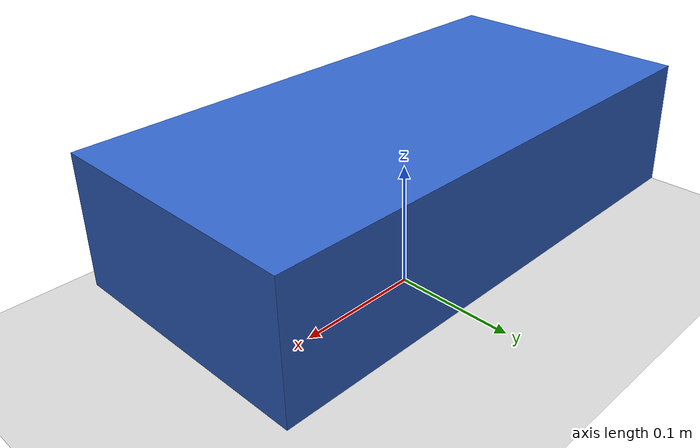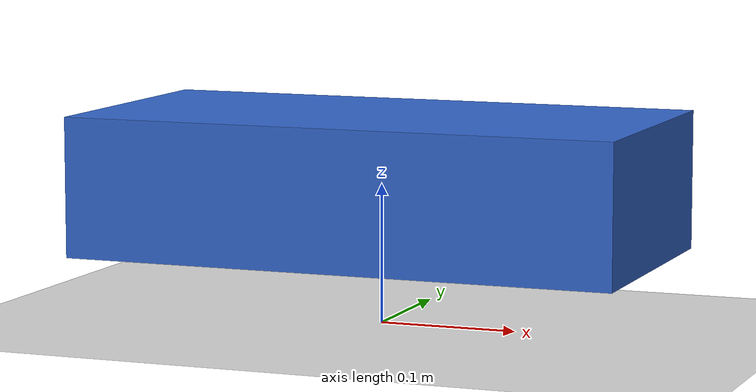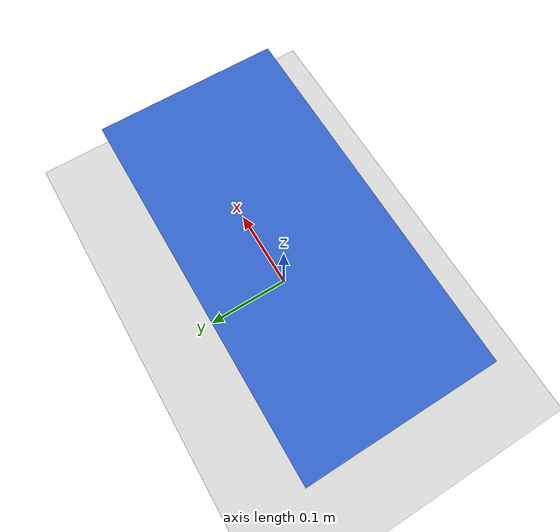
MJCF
<mujoco model="minimal-mobile-base">
  <option timestep="0.05"/>
  <worldbody>
    <light name="light" pos="0 0 2"/>
    <geom name="floor" type="plane" size="3 3 0.05" rgba="0.85 0.85 0.85 1"/>
    <body name="base" pos="0 0 0.1">
      <freejoint name="base_freejoint"/>
      <geom name="base_geom" type="box" size="0.2 0.1 0.05" rgba="0.2 0.4 0.8 1"/>
    </body>
  </worldbody>
</mujoco>
